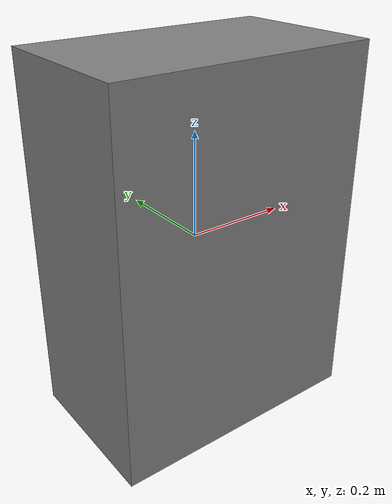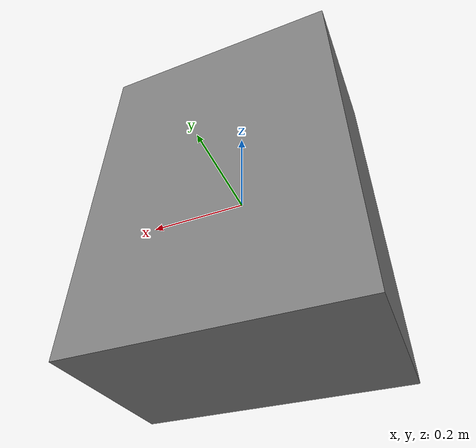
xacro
<robot name='simple4wheeler'
	xmlns:xacro='http://www.ros.org/wiki/xacro'>
	<xacro:property name='pi' value='3.142'/>

	<link name='map' />

	<link name='link_chassis'>
		<pose>0 0 0.1 0 0 0</pose>
		<inertial>
			<mass value='3'/>
			<origin rpy='0 0 0' xyz='0 0 0.1'/>
			<inertia ixx='0.03954' ixy='0' ixz='0' iyy='0.10620' iyz='0' izz='0.10620'/>
		</inertial>
		<collision name='collision_chassis'>
			<geometry>
				<box size='0.5 0.3 0.7'/>
			</geometry>
		</collision>
		<visual name='visual_chassis'>
			<geometry>
				<box size='0.5 0.3 0.7'/>
			</geometry>
			<material name='Gray'>
				<color rgba='0.5 0.5 0.5 1.0'/>
			</material>
		</visual>
	</link>

	<joint name='joint_map' type='fixed'>
		<parent link='map'/>
		<child link='link_chassis'/>
	</joint>
</robot>
